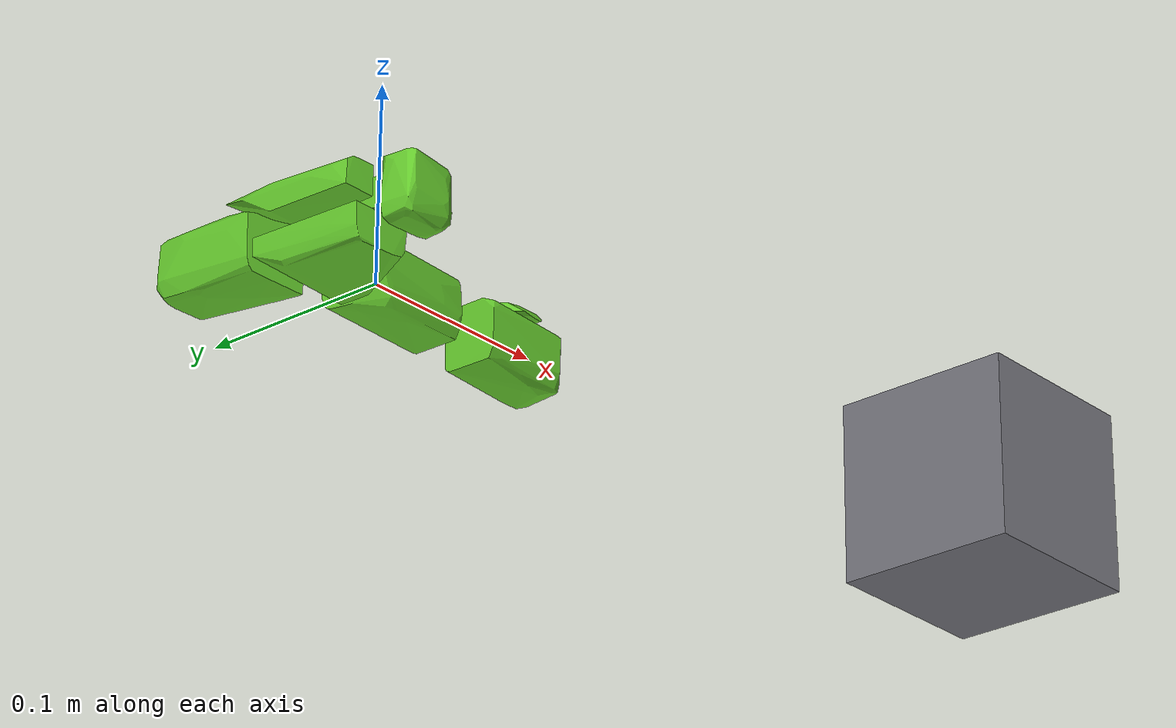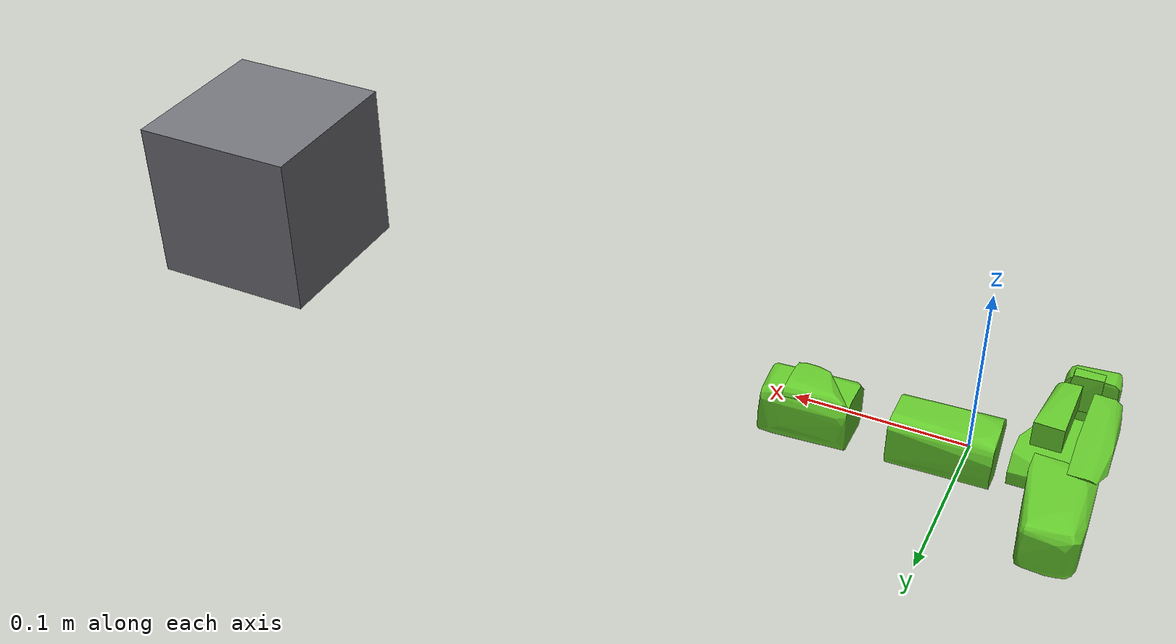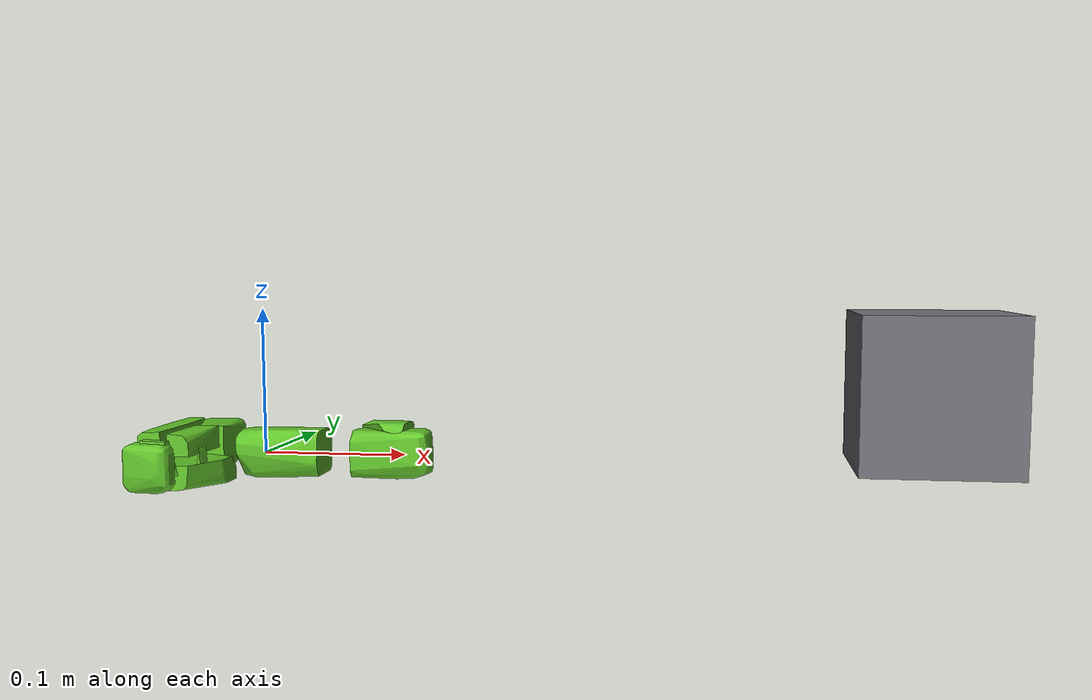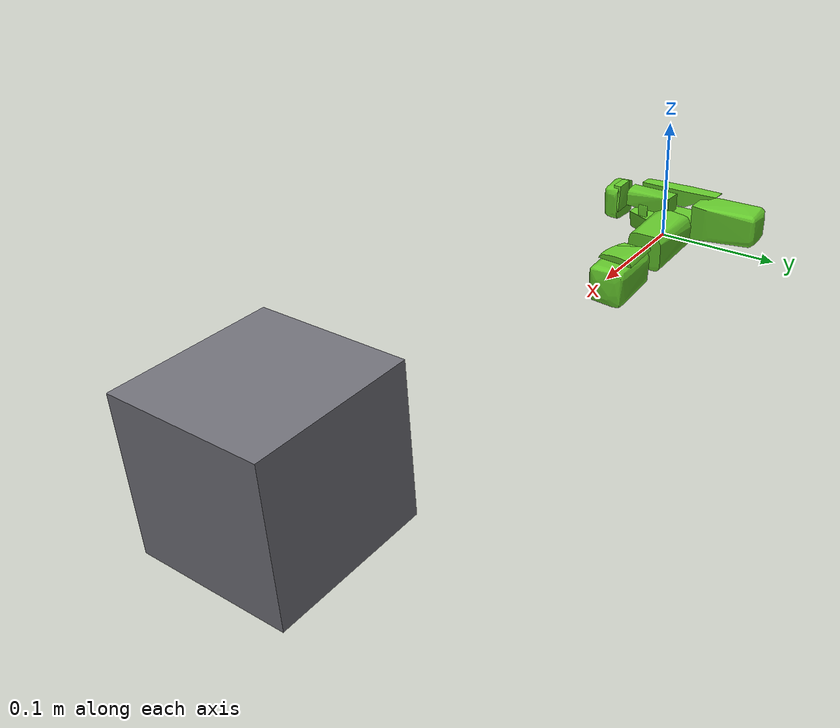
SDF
<?xml version='1.0' encoding='UTF-8'?>
<!-- This SDF was autogenerated by obj_to_drake_sdf.py -->
<sdf version="1.7">
  <model name="T_shape_video">
    <link name="T_shape_video">
      <inertial>
        <pose>0 0 0 0 0 0</pose>
        <mass>0.05</mass>
        <inertia>
          <ixx>6.6879624e-05</ixx>
          <iyy>0.00018920208</iyy>
          <izz>0.00023983389</izz>
          <ixy>-6.369496e-06</ixy>
          <ixz>-8.3803609e-07</ixz>
          <iyz>-2.8361211e-07</iyz>
        </inertia>
      </inertial>
      <visual name="convex_0">
        <pose>0 0 0 0 0 0</pose>
        <geometry>
          <mesh>
            <uri>T_shape_video_convex_0.obj</uri>
          </mesh>
        </geometry>
        <material>
          <diffuse>0.39215686274509803 0.7843137254901961 0.17254901960784313 1</diffuse>
        </material>
      </visual>
      <collision name="convex_0_volume">
        <pose>0 0 0 0 0 0</pose>
        <geometry>
          <mesh>
            <uri>T_shape_video_convex_0.obj</uri>
          </mesh>
        </geometry>
        <drake:proximity_properties xmlns:drake="uri:drake">
          <drake:compliant_hydroelastic/>
          <drake:hydroelastic_modulus> 3.0e7 </drake:hydroelastic_modulus>
          <drake:mesh_resolution_hint> 0.02 </drake:mesh_resolution_hint>
          <drake:hunt_crossley_dissipation>10</drake:hunt_crossley_dissipation>
          <drake:mu_dynamic>0.3</drake:mu_dynamic>
        </drake:proximity_properties>
      </collision>
      <visual name="convex_1">
        <pose>0 0 0 0 0 0</pose>
        <geometry>
          <mesh>
            <uri>T_shape_video_convex_1.obj</uri>
          </mesh>
        </geometry>
        <material>
          <diffuse>0.39215686274509803 0.7843137254901961 0.17254901960784313 1</diffuse>
        </material>
      </visual>
      <collision name="convex_1_volume">
        <pose>0 0 0 0 0 0</pose>
        <geometry>
          <mesh>
            <uri>T_shape_video_convex_1.obj</uri>
          </mesh>
        </geometry>
        <drake:proximity_properties xmlns:drake="uri:drake">
          <drake:compliant_hydroelastic/>
          <drake:hydroelastic_modulus> 3.0e7 </drake:hydroelastic_modulus>
          <drake:mesh_resolution_hint> 0.02 </drake:mesh_resolution_hint>
          <drake:hunt_crossley_dissipation>10</drake:hunt_crossley_dissipation>
          <drake:mu_dynamic>0.3</drake:mu_dynamic>
        </drake:proximity_properties>
      </collision>
      <visual name="convex_2">
        <pose>0 0 0 0 0 0</pose>
        <geometry>
          <mesh>
            <uri>T_shape_video_convex_2.obj</uri>
          </mesh>
        </geometry>
        <material>
          <diffuse>0.39215686274509803 0.7843137254901961 0.17254901960784313 1</diffuse>
        </material>
      </visual>
      <collision name="convex_2_volume">
        <pose>0 0 0 0 0 0</pose>
        <geometry>
          <mesh>
            <uri>T_shape_video_convex_2.obj</uri>
          </mesh>
        </geometry>
        <drake:proximity_properties xmlns:drake="uri:drake">
          <drake:compliant_hydroelastic/>
          <drake:hydroelastic_modulus> 3.0e7 </drake:hydroelastic_modulus>
          <drake:mesh_resolution_hint> 0.02 </drake:mesh_resolution_hint>
          <drake:hunt_crossley_dissipation>10</drake:hunt_crossley_dissipation>
          <drake:mu_dynamic>0.3</drake:mu_dynamic>
        </drake:proximity_properties>
      </collision>
      <visual name="convex_3">
        <pose>0 0 0 0 0 0</pose>
        <geometry>
          <mesh>
            <uri>T_shape_video_convex_3.obj</uri>
          </mesh>
        </geometry>
        <material>
          <diffuse>0.39215686274509803 0.7843137254901961 0.17254901960784313 1</diffuse>
        </material>
      </visual>
      <collision name="convex_3_volume">
        <pose>0 0 0 0 0 0</pose>
        <geometry>
          <mesh>
            <uri>T_shape_video_convex_3.obj</uri>
          </mesh>
        </geometry>
        <drake:proximity_properties xmlns:drake="uri:drake">
          <drake:compliant_hydroelastic/>
          <drake:hydroelastic_modulus> 3.0e7 </drake:hydroelastic_modulus>
          <drake:mesh_resolution_hint> 0.02 </drake:mesh_resolution_hint>
          <drake:hunt_crossley_dissipation>10</drake:hunt_crossley_dissipation>
          <drake:mu_dynamic>0.3</drake:mu_dynamic>
        </drake:proximity_properties>
      </collision>
      <visual name="convex_4">
        <pose>0 0 0 0 0 0</pose>
        <geometry>
          <mesh>
            <uri>T_shape_video_convex_4.obj</uri>
          </mesh>
        </geometry>
        <material>
          <diffuse>0.39215686274509803 0.7843137254901961 0.17254901960784313 1</diffuse>
        </material>
      </visual>
      <collision name="convex_4_volume">
        <pose>0 0 0 0 0 0</pose>
        <geometry>
          <mesh>
            <uri>T_shape_video_convex_4.obj</uri>
          </mesh>
        </geometry>
        <drake:proximity_properties xmlns:drake="uri:drake">
          <drake:compliant_hydroelastic/>
          <drake:hydroelastic_modulus> 3.0e7 </drake:hydroelastic_modulus>
          <drake:mesh_resolution_hint> 0.02 </drake:mesh_resolution_hint>
          <drake:hunt_crossley_dissipation>10</drake:hunt_crossley_dissipation>
          <drake:mu_dynamic>0.3</drake:mu_dynamic>
        </drake:proximity_properties>
      </collision>
      <visual name="convex_5">
        <pose>0 0 0 0 0 0</pose>
        <geometry>
          <mesh>
            <uri>T_shape_video_convex_5.obj</uri>
          </mesh>
        </geometry>
        <material>
          <diffuse>0.39215686274509803 0.7843137254901961 0.17254901960784313 1</diffuse>
        </material>
      </visual>
      <collision name="convex_5_volume">
        <pose>0 0 0 0 0 0</pose>
        <geometry>
          <mesh>
            <uri>T_shape_video_convex_5.obj</uri>
          </mesh>
        </geometry>
        <drake:proximity_properties xmlns:drake="uri:drake">
          <drake:compliant_hydroelastic/>
          <drake:hydroelastic_modulus> 3.0e7 </drake:hydroelastic_modulus>
          <drake:mesh_resolution_hint> 0.02 </drake:mesh_resolution_hint>
          <drake:hunt_crossley_dissipation>10</drake:hunt_crossley_dissipation>
          <drake:mu_dynamic>0.3</drake:mu_dynamic>
        </drake:proximity_properties>
      </collision>
      <visual name="convex_6">
        <pose>0 0 0 0 0 0</pose>
        <geometry>
          <mesh>
            <uri>T_shape_video_convex_6.obj</uri>
          </mesh>
        </geometry>
        <material>
          <diffuse>0.39215686274509803 0.7843137254901961 0.17254901960784313 1</diffuse>
        </material>
      </visual>
      <collision name="convex_6_volume">
        <pose>0 0 0 0 0 0</pose>
        <geometry>
          <mesh>
            <uri>T_shape_video_convex_6.obj</uri>
          </mesh>
        </geometry>
        <drake:proximity_properties xmlns:drake="uri:drake">
          <drake:compliant_hydroelastic/>
          <drake:hydroelastic_modulus> 3.0e7 </drake:hydroelastic_modulus>
          <drake:mesh_resolution_hint> 0.02 </drake:mesh_resolution_hint>
          <drake:hunt_crossley_dissipation>10</drake:hunt_crossley_dissipation>
          <drake:mu_dynamic>0.3</drake:mu_dynamic>
        </drake:proximity_properties>
      </collision>
      <visual name="convex_7">
        <pose>0 0 0 0 0 0</pose>
        <geometry>
          <mesh>
            <uri>T_shape_video_convex_7.obj</uri>
          </mesh>
        </geometry>
        <material>
          <diffuse>0.39215686274509803 0.7843137254901961 0.17254901960784313 1</diffuse>
        </material>
      </visual>
      <collision name="convex_7_volume">
        <pose>0 0 0 0 0 0</pose>
        <geometry>
          <mesh>
            <uri>T_shape_video_convex_7.obj</uri>
          </mesh>
        </geometry>
        <drake:proximity_properties xmlns:drake="uri:drake">
          <drake:compliant_hydroelastic/>
          <drake:hydroelastic_modulus> 3.0e7 </drake:hydroelastic_modulus>
          <drake:mesh_resolution_hint> 0.02 </drake:mesh_resolution_hint>
          <drake:hunt_crossley_dissipation>10</drake:hunt_crossley_dissipation>
          <drake:mu_dynamic>0.3</drake:mu_dynamic>
        </drake:proximity_properties>
      </collision>
      <visual name="convex_8">
        <pose>0 0 0 0 0 0</pose>
        <geometry>
          <mesh>
            <uri>T_shape_video_convex_8.obj</uri>
          </mesh>
        </geometry>
        <material>
          <diffuse>0.39215686274509803 0.7843137254901961 0.17254901960784313 1</diffuse>
        </material>
      </visual>
      <collision name="convex_8_volume">
        <pose>0 0 0 0 0 0</pose>
        <geometry>
          <mesh>
            <uri>T_shape_video_convex_8.obj</uri>
          </mesh>
        </geometry>
        <drake:proximity_properties xmlns:drake="uri:drake">
          <drake:compliant_hydroelastic/>
          <drake:hydroelastic_modulus> 3.0e7 </drake:hydroelastic_modulus>
          <drake:mesh_resolution_hint> 0.02 </drake:mesh_resolution_hint>
          <drake:hunt_crossley_dissipation>10</drake:hunt_crossley_dissipation>
          <drake:mu_dynamic>0.3</drake:mu_dynamic>
        </drake:proximity_properties>
      </collision>
      <visual name="convex_9">
        <pose>0 0 0 0 0 0</pose>
        <geometry>
          <mesh>
            <uri>T_shape_video_convex_9.obj</uri>
          </mesh>
        </geometry>
        <material>
          <diffuse>0.39215686274509803 0.7843137254901961 0.17254901960784313 1</diffuse>
        </material>
      </visual>
      <collision name="convex_9_volume">
        <pose>0 0 0 0 0 0</pose>
        <geometry>
          <mesh>
            <uri>T_shape_video_convex_9.obj</uri>
          </mesh>
        </geometry>
        <drake:proximity_properties xmlns:drake="uri:drake">
          <drake:compliant_hydroelastic/>
          <drake:hydroelastic_modulus> 3.0e7 </drake:hydroelastic_modulus>
          <drake:mesh_resolution_hint> 0.02 </drake:mesh_resolution_hint>
          <drake:hunt_crossley_dissipation>10</drake:hunt_crossley_dissipation>
          <drake:mu_dynamic>0.3</drake:mu_dynamic>
        </drake:proximity_properties>
      </collision>
    </link>
    <link name="oim_fixed_obs_box">
      <pose>0.44999999999999996 0.0 0.05 0 0 0</pose>
      <collision name="collision">
        <geometry><box><size>0.1 0.1 0.1</size></box></geometry>
        <drake:proximity_properties xmlns:drake="uri:drake">
          <drake:mu_dynamic>0.8</drake:mu_dynamic>
          <drake:mu_static>0.8</drake:mu_static>
        </drake:proximity_properties>
      </collision>
      <visual name="visual"><geometry><box><size>0.1 0.1 0.1</size></box></geometry>
        <material><diffuse>0.45 0.45 0.48 1</diffuse></material></visual>
    </link>
    <joint name="oim_fixed_obs_box_weld" type="fixed">
      <parent>world</parent><child>oim_fixed_obs_box</child>
    </joint>
  </model>
</sdf>
